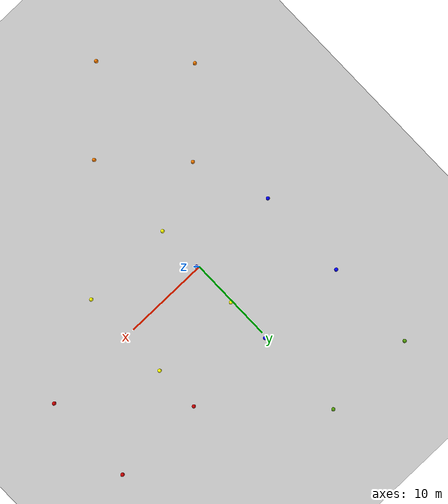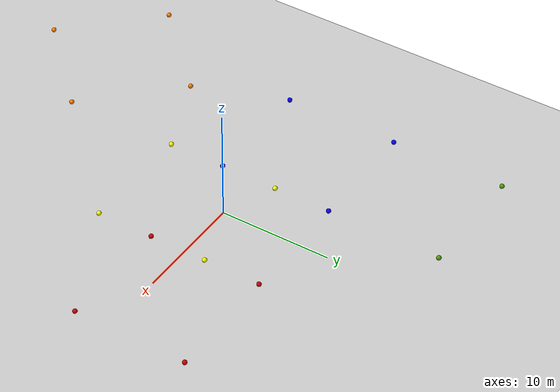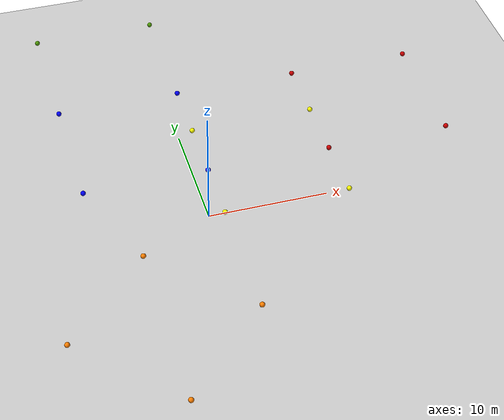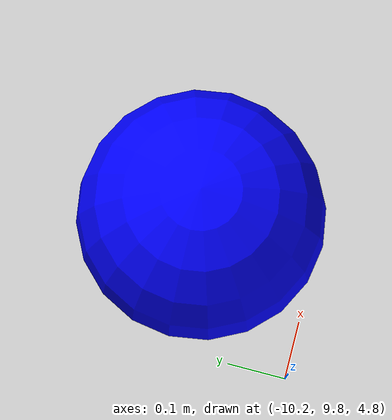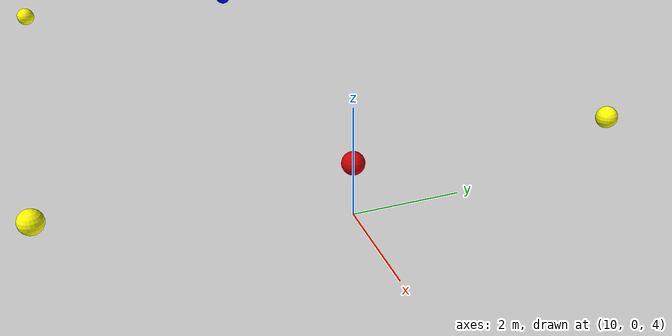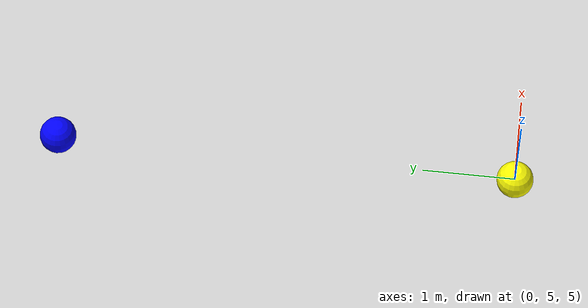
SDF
<sdf version="1.7">
 <world name="default">
  <physics type="ode">
   <ode>
    <solver>
     <type>quick</type>
     <iters>100</iters>
     <sor>1</sor>
     <use_dynamic_moi_rescaling>0</use_dynamic_moi_rescaling>
    </solver>
    <constraints>
     <cfm>0</cfm>
     <erp>0.9</erp>
     <contact_max_correcting_vel>0.1</contact_max_correcting_vel>
     <contact_surface_layer>0</contact_surface_layer>
    </constraints>
   </ode>
   <real_time_update_rate>-1</real_time_update_rate>
   <max_step_size>0.001</max_step_size>
   <real_time_factor>1</real_time_factor>
  </physics>
  <model name="ground_plane">
   <pose>0 520 0 0 0 -1.5708</pose>
   <static>1</static>
   <link name="link">
    <collision name="collision">
     <geometry><plane><normal>0 0 1</normal><size>5000 5000</size></plane></geometry>
     <surface><friction><ode><mu>1</mu><mu2>1</mu2></ode></friction></surface>
    </collision>
    <visual name="runway">
     <pose>0 0 0.005 0 -0 0</pose>
     <cast_shadows>0</cast_shadows>
     <geometry><plane><normal>0 0 1</normal><size>1829 45</size></plane></geometry>
     <material>
      <script><uri>file://media/materials/scripts/gazebo.material</uri><name>Gazebo/Runway</name></script>
     </material>
    </visual>
    <visual name="grass">
     <pose>0 0 -0.1 0 -0 0</pose>
     <cast_shadows>0</cast_shadows>
     <geometry><plane><normal>0 0 1</normal><size>5000 5000</size></plane></geometry>
     <material>
      <script><uri>file://media/materials/scripts/gazebo.material</uri><name>Gazebo/Grass</name></script>
     </material>
    </visual>
   </link>
  </model>
  <light name="sun" type="directional">
   <pose>0 0 10 0 -0 0</pose>
   <diffuse>0.8 0.8 0.8 1</diffuse>
   <specular>0.2 0.2 0.2 1</specular>
   <attenuation>
    <range>1000</range>
    <constant>0.9</constant>
    <linear>0.01</linear>
    <quadratic>0.001</quadratic>
   </attenuation>
   <direction>-0.5 0.1 -0.9</direction>
   <spot><inner_angle>0</inner_angle><outer_angle>0</outer_angle><falloff>0</falloff></spot>
  </light>
  <gravity>0 0 -9.8</gravity>
  <magnetic_field>6e-06 2.3e-05 -4.2e-05</magnetic_field>
  <atmosphere type="adiabatic"/>
  <scene><ambient>0.4 0.4 0.4 1</ambient><background>0.7 0.7 0.7 1</background><shadows>1</shadows></scene>
  <spherical_coordinates>
   <surface_model>EARTH_WGS84</surface_model>
   <latitude_deg>0</latitude_deg>
   <longitude_deg>0</longitude_deg>
   <elevation>0</elevation>
   <heading_deg>0</heading_deg>
  </spherical_coordinates>
  <model name="waypoint_0.0">
   <pose>0.0 0.0 5.0 0 0 0</pose>
   <link name="link">
    <inertial>
     <inertia><ixx>0.1</ixx><ixy>0</ixy><ixz>0</ixz><iyy>0.1</iyy><iyz>0</iyz><izz>0.1</izz></inertia>
     <mass>1</mass>
    </inertial>
    <gravity>0</gravity>
    <visual name="visual">
     <geometry><sphere><radius>0.2</radius></sphere></geometry>
     <material>
      <script><name>Gazebo/Grey</name><uri>file://media/materials/scripts/gazebo.material</uri></script>
      <shader type="pixel"><normal_map>__default__</normal_map></shader>
      <ambient>0.3 0.3 0.3 1</ambient>
      <diffuse>0.0 0.0 1.0 1</diffuse>
      <specular>0.01 0.01 0.01 1</specular>
      <emissive>0 0 0 1</emissive>
     </material>
     <transparency>0.05</transparency>
    </visual>
   </link>
   <static>0</static>
  </model>
  <model name="waypoint_0.1">
   <pose>-10.0 6.123233995736766e-16 5.0 0 0 0</pose>
   <link name="link">
    <inertial>
     <inertia><ixx>0.1</ixx><ixy>0</ixy><ixz>0</ixz><iyy>0.1</iyy><iyz>0</iyz><izz>0.1</izz></inertia>
     <mass>1</mass>
    </inertial>
    <gravity>0</gravity>
    <visual name="visual">
     <geometry><sphere><radius>0.2</radius></sphere></geometry>
     <material>
      <script><name>Gazebo/Grey</name><uri>file://media/materials/scripts/gazebo.material</uri></script>
      <shader type="pixel"><normal_map>__default__</normal_map></shader>
      <ambient>0.3 0.3 0.3 1</ambient>
      <diffuse>0.0 0.0 1.0 1</diffuse>
      <specular>0.01 0.01 0.01 1</specular>
      <emissive>0 0 0 1</emissive>
     </material>
     <transparency>0.05</transparency>
    </visual>
   </link>
   <static>0</static>
  </model>
  <model name="waypoint_0.2">
   <pose>-10.0 10.0 5.0 0 0 0</pose>
   <link name="link">
    <inertial>
     <inertia><ixx>0.1</ixx><ixy>0</ixy><ixz>0</ixz><iyy>0.1</iyy><iyz>0</iyz><izz>0.1</izz></inertia>
     <mass>1</mass>
    </inertial>
    <gravity>0</gravity>
    <visual name="visual">
     <geometry><sphere><radius>0.2</radius></sphere></geometry>
     <material>
      <script><name>Gazebo/Grey</name><uri>file://media/materials/scripts/gazebo.material</uri></script>
      <shader type="pixel"><normal_map>__default__</normal_map></shader>
      <ambient>0.3 0.3 0.3 1</ambient>
      <diffuse>0.0 0.0 1.0 1</diffuse>
      <specular>0.01 0.01 0.01 1</specular>
      <emissive>0 0 0 1</emissive>
     </material>
     <transparency>0.05</transparency>
    </visual>
   </link>
   <static>0</static>
  </model>
  <model name="waypoint_0.3">
   <pose>6.123233995736766e-16 10.0 5.0 0 0 0</pose>
   <link name="link">
    <inertial>
     <inertia><ixx>0.1</ixx><ixy>0</ixy><ixz>0</ixz><iyy>0.1</iyy><iyz>0</iyz><izz>0.1</izz></inertia>
     <mass>1</mass>
    </inertial>
    <gravity>0</gravity>
    <visual name="visual">
     <geometry><sphere><radius>0.2</radius></sphere></geometry>
     <material>
      <script><name>Gazebo/Grey</name><uri>file://media/materials/scripts/gazebo.material</uri></script>
      <shader type="pixel"><normal_map>__default__</normal_map></shader>
      <ambient>0.3 0.3 0.3 1</ambient>
      <diffuse>0.0 0.0 1.0 1</diffuse>
      <specular>0.01 0.01 0.01 1</specular>
      <emissive>0 0 0 1</emissive>
     </material>
     <transparency>0.05</transparency>
    </visual>
   </link>
   <static>0</static>
  </model>
  <model name="waypoint_0.4">
   <pose>0.0 0.0 5.0 0 0 0</pose>
   <link name="link">
    <inertial>
     <inertia><ixx>0.1</ixx><ixy>0</ixy><ixz>0</ixz><iyy>0.1</iyy><iyz>0</iyz><izz>0.1</izz></inertia>
     <mass>1</mass>
    </inertial>
    <gravity>0</gravity>
    <visual name="visual">
     <geometry><sphere><radius>0.2</radius></sphere></geometry>
     <material>
      <script><name>Gazebo/Grey</name><uri>file://media/materials/scripts/gazebo.material</uri></script>
      <shader type="pixel"><normal_map>__default__</normal_map></shader>
      <ambient>0.3 0.3 0.3 1</ambient>
      <diffuse>0.0 0.0 1.0 1</diffuse>
      <specular>0.01 0.01 0.01 1</specular>
      <emissive>0 0 0 1</emissive>
     </material>
     <transparency>0.05</transparency>
    </visual>
   </link>
   <static>0</static>
  </model>
  <model name="waypoint_1.0">
   <pose>6.123233995736766e-16 10.0 5.0 0 0 0</pose>
   <link name="link">
    <inertial>
     <inertia><ixx>0.1</ixx><ixy>0</ixy><ixz>0</ixz><iyy>0.1</iyy><iyz>0</iyz><izz>0.1</izz></inertia>
     <mass>1</mass>
    </inertial>
    <gravity>0</gravity>
    <visual name="visual">
     <geometry><sphere><radius>0.2</radius></sphere></geometry>
     <material>
      <script><name>Gazebo/Grey</name><uri>file://media/materials/scripts/gazebo.material</uri></script>
      <shader type="pixel"><normal_map>__default__</normal_map></shader>
      <ambient>0.3 0.3 0.3 1</ambient>
      <diffuse>0.306 0.604 0.024 1</diffuse>
      <specular>0.01 0.01 0.01 1</specular>
      <emissive>0 0 0 1</emissive>
     </material>
     <transparency>0.05</transparency>
    </visual>
   </link>
   <static>0</static>
  </model>
  <model name="waypoint_1.1">
   <pose>-10.0 10.0 5.0 0 0 0</pose>
   <link name="link">
    <inertial>
     <inertia><ixx>0.1</ixx><ixy>0</ixy><ixz>0</ixz><iyy>0.1</iyy><iyz>0</iyz><izz>0.1</izz></inertia>
     <mass>1</mass>
    </inertial>
    <gravity>0</gravity>
    <visual name="visual">
     <geometry><sphere><radius>0.2</radius></sphere></geometry>
     <material>
      <script><name>Gazebo/Grey</name><uri>file://media/materials/scripts/gazebo.material</uri></script>
      <shader type="pixel"><normal_map>__default__</normal_map></shader>
      <ambient>0.3 0.3 0.3 1</ambient>
      <diffuse>0.306 0.604 0.024 1</diffuse>
      <specular>0.01 0.01 0.01 1</specular>
      <emissive>0 0 0 1</emissive>
     </material>
     <transparency>0.05</transparency>
    </visual>
   </link>
   <static>0</static>
  </model>
  <model name="waypoint_1.2">
   <pose>-9.999999999999998 20.0 5.0 0 0 0</pose>
   <link name="link">
    <inertial>
     <inertia><ixx>0.1</ixx><ixy>0</ixy><ixz>0</ixz><iyy>0.1</iyy><iyz>0</iyz><izz>0.1</izz></inertia>
     <mass>1</mass>
    </inertial>
    <gravity>0</gravity>
    <visual name="visual">
     <geometry><sphere><radius>0.2</radius></sphere></geometry>
     <material>
      <script><name>Gazebo/Grey</name><uri>file://media/materials/scripts/gazebo.material</uri></script>
      <shader type="pixel"><normal_map>__default__</normal_map></shader>
      <ambient>0.3 0.3 0.3 1</ambient>
      <diffuse>0.306 0.604 0.024 1</diffuse>
      <specular>0.01 0.01 0.01 1</specular>
      <emissive>0 0 0 1</emissive>
     </material>
     <transparency>0.05</transparency>
    </visual>
   </link>
   <static>0</static>
  </model>
  <model name="waypoint_1.3">
   <pose>1.2246467991473533e-15 20.0 5.0 0 0 0</pose>
   <link name="link">
    <inertial>
     <inertia><ixx>0.1</ixx><ixy>0</ixy><ixz>0</ixz><iyy>0.1</iyy><iyz>0</iyz><izz>0.1</izz></inertia>
     <mass>1</mass>
    </inertial>
    <gravity>0</gravity>
    <visual name="visual">
     <geometry><sphere><radius>0.2</radius></sphere></geometry>
     <material>
      <script><name>Gazebo/Grey</name><uri>file://media/materials/scripts/gazebo.material</uri></script>
      <shader type="pixel"><normal_map>__default__</normal_map></shader>
      <ambient>0.3 0.3 0.3 1</ambient>
      <diffuse>0.306 0.604 0.024 1</diffuse>
      <specular>0.01 0.01 0.01 1</specular>
      <emissive>0 0 0 1</emissive>
     </material>
     <transparency>0.05</transparency>
    </visual>
   </link>
   <static>0</static>
  </model>
  <model name="waypoint_1.4">
   <pose>6.123233995736766e-16 10.0 5.0 0 0 0</pose>
   <link name="link">
    <inertial>
     <inertia><ixx>0.1</ixx><ixy>0</ixy><ixz>0</ixz><iyy>0.1</iyy><iyz>0</iyz><izz>0.1</izz></inertia>
     <mass>1</mass>
    </inertial>
    <gravity>0</gravity>
    <visual name="visual">
     <geometry><sphere><radius>0.2</radius></sphere></geometry>
     <material>
      <script><name>Gazebo/Grey</name><uri>file://media/materials/scripts/gazebo.material</uri></script>
      <shader type="pixel"><normal_map>__default__</normal_map></shader>
      <ambient>0.3 0.3 0.3 1</ambient>
      <diffuse>0.306 0.604 0.024 1</diffuse>
      <specular>0.01 0.01 0.01 1</specular>
      <emissive>0 0 0 1</emissive>
     </material>
     <transparency>0.05</transparency>
    </visual>
   </link>
   <static>0</static>
  </model>
  <model name="waypoint_2.0">
   <pose>10.0 -5.000000000000001 5.0 0 0 0</pose>
   <link name="link">
    <inertial>
     <inertia><ixx>0.1</ixx><ixy>0</ixy><ixz>0</ixz><iyy>0.1</iyy><iyz>0</iyz><izz>0.1</izz></inertia>
     <mass>1</mass>
    </inertial>
    <gravity>0</gravity>
    <visual name="visual">
     <geometry><sphere><radius>0.2</radius></sphere></geometry>
     <material>
      <script><name>Gazebo/Grey</name><uri>file://media/materials/scripts/gazebo.material</uri></script>
      <shader type="pixel"><normal_map>__default__</normal_map></shader>
      <ambient>0.3 0.3 0.3 1</ambient>
      <diffuse>1.0 1.0 0.0 1</diffuse>
      <specular>0.01 0.01 0.01 1</specular>
      <emissive>0 0 0 1</emissive>
     </material>
     <transparency>0.05</transparency>
    </visual>
   </link>
   <static>0</static>
  </model>
  <model name="waypoint_2.1">
   <pose>-3.061616997868383e-16 -5.0 5.0 0 0 0</pose>
   <link name="link">
    <inertial>
     <inertia><ixx>0.1</ixx><ixy>0</ixy><ixz>0</ixz><iyy>0.1</iyy><iyz>0</iyz><izz>0.1</izz></inertia>
     <mass>1</mass>
    </inertial>
    <gravity>0</gravity>
    <visual name="visual">
     <geometry><sphere><radius>0.2</radius></sphere></geometry>
     <material>
      <script><name>Gazebo/Grey</name><uri>file://media/materials/scripts/gazebo.material</uri></script>
      <shader type="pixel"><normal_map>__default__</normal_map></shader>
      <ambient>0.3 0.3 0.3 1</ambient>
      <diffuse>1.0 1.0 0.0 1</diffuse>
      <specular>0.01 0.01 0.01 1</specular>
      <emissive>0 0 0 1</emissive>
     </material>
     <transparency>0.05</transparency>
    </visual>
   </link>
   <static>0</static>
  </model>
  <model name="waypoint_2.2">
   <pose>3.061616997868383e-16 5.0 5.0 0 0 0</pose>
   <link name="link">
    <inertial>
     <inertia><ixx>0.1</ixx><ixy>0</ixy><ixz>0</ixz><iyy>0.1</iyy><iyz>0</iyz><izz>0.1</izz></inertia>
     <mass>1</mass>
    </inertial>
    <gravity>0</gravity>
    <visual name="visual">
     <geometry><sphere><radius>0.2</radius></sphere></geometry>
     <material>
      <script><name>Gazebo/Grey</name><uri>file://media/materials/scripts/gazebo.material</uri></script>
      <shader type="pixel"><normal_map>__default__</normal_map></shader>
      <ambient>0.3 0.3 0.3 1</ambient>
      <diffuse>1.0 1.0 0.0 1</diffuse>
      <specular>0.01 0.01 0.01 1</specular>
      <emissive>0 0 0 1</emissive>
     </material>
     <transparency>0.05</transparency>
    </visual>
   </link>
   <static>0</static>
  </model>
  <model name="waypoint_2.3">
   <pose>10.0 4.999999999999999 5.0 0 0 0</pose>
   <link name="link">
    <inertial>
     <inertia><ixx>0.1</ixx><ixy>0</ixy><ixz>0</ixz><iyy>0.1</iyy><iyz>0</iyz><izz>0.1</izz></inertia>
     <mass>1</mass>
    </inertial>
    <gravity>0</gravity>
    <visual name="visual">
     <geometry><sphere><radius>0.2</radius></sphere></geometry>
     <material>
      <script><name>Gazebo/Grey</name><uri>file://media/materials/scripts/gazebo.material</uri></script>
      <shader type="pixel"><normal_map>__default__</normal_map></shader>
      <ambient>0.3 0.3 0.3 1</ambient>
      <diffuse>1.0 1.0 0.0 1</diffuse>
      <specular>0.01 0.01 0.01 1</specular>
      <emissive>0 0 0 1</emissive>
     </material>
     <transparency>0.05</transparency>
    </visual>
   </link>
   <static>0</static>
  </model>
  <model name="waypoint_2.4">
   <pose>10.0 -5.000000000000001 5.0 0 0 0</pose>
   <link name="link">
    <inertial>
     <inertia><ixx>0.1</ixx><ixy>0</ixy><ixz>0</ixz><iyy>0.1</iyy><iyz>0</iyz><izz>0.1</izz></inertia>
     <mass>1</mass>
    </inertial>
    <gravity>0</gravity>
    <visual name="visual">
     <geometry><sphere><radius>0.2</radius></sphere></geometry>
     <material>
      <script><name>Gazebo/Grey</name><uri>file://media/materials/scripts/gazebo.material</uri></script>
      <shader type="pixel"><normal_map>__default__</normal_map></shader>
      <ambient>0.3 0.3 0.3 1</ambient>
      <diffuse>1.0 1.0 0.0 1</diffuse>
      <specular>0.01 0.01 0.01 1</specular>
      <emissive>0 0 0 1</emissive>
     </material>
     <transparency>0.05</transparency>
    </visual>
   </link>
   <static>0</static>
  </model>
  <model name="waypoint_3.0">
   <pose>-9.18485099360515e-16 -15.0 5.0 0 0 0</pose>
   <link name="link">
    <inertial>
     <inertia><ixx>0.1</ixx><ixy>0</ixy><ixz>0</ixz><iyy>0.1</iyy><iyz>0</iyz><izz>0.1</izz></inertia>
     <mass>1</mass>
    </inertial>
    <gravity>0</gravity>
    <visual name="visual">
     <geometry><sphere><radius>0.2</radius></sphere></geometry>
     <material>
      <script><name>Gazebo/Grey</name><uri>file://media/materials/scripts/gazebo.material</uri></script>
      <shader type="pixel"><normal_map>__default__</normal_map></shader>
      <ambient>0.3 0.3 0.3 1</ambient>
      <diffuse>1.0 0.5 0.0 1</diffuse>
      <specular>0.01 0.01 0.01 1</specular>
      <emissive>0 0 0 1</emissive>
     </material>
     <transparency>0.05</transparency>
    </visual>
   </link>
   <static>0</static>
  </model>
  <model name="waypoint_3.1">
   <pose>-7.071067811865477 -22.071067811865476 5.0 0 0 0</pose>
   <link name="link">
    <inertial>
     <inertia><ixx>0.1</ixx><ixy>0</ixy><ixz>0</ixz><iyy>0.1</iyy><iyz>0</iyz><izz>0.1</izz></inertia>
     <mass>1</mass>
    </inertial>
    <gravity>0</gravity>
    <visual name="visual">
     <geometry><sphere><radius>0.2</radius></sphere></geometry>
     <material>
      <script><name>Gazebo/Grey</name><uri>file://media/materials/scripts/gazebo.material</uri></script>
      <shader type="pixel"><normal_map>__default__</normal_map></shader>
      <ambient>0.3 0.3 0.3 1</ambient>
      <diffuse>1.0 0.5 0.0 1</diffuse>
      <specular>0.01 0.01 0.01 1</specular>
      <emissive>0 0 0 1</emissive>
     </material>
     <transparency>0.05</transparency>
    </visual>
   </link>
   <static>0</static>
  </model>
  <model name="waypoint_3.2">
   <pose>-14.142135623730953 -15.0 5.0 0 0 0</pose>
   <link name="link">
    <inertial>
     <inertia><ixx>0.1</ixx><ixy>0</ixy><ixz>0</ixz><iyy>0.1</iyy><iyz>0</iyz><izz>0.1</izz></inertia>
     <mass>1</mass>
    </inertial>
    <gravity>0</gravity>
    <visual name="visual">
     <geometry><sphere><radius>0.2</radius></sphere></geometry>
     <material>
      <script><name>Gazebo/Grey</name><uri>file://media/materials/scripts/gazebo.material</uri></script>
      <shader type="pixel"><normal_map>__default__</normal_map></shader>
      <ambient>0.3 0.3 0.3 1</ambient>
      <diffuse>1.0 0.5 0.0 1</diffuse>
      <specular>0.01 0.01 0.01 1</specular>
      <emissive>0 0 0 1</emissive>
     </material>
     <transparency>0.05</transparency>
    </visual>
   </link>
   <static>0</static>
  </model>
  <model name="waypoint_3.3">
   <pose>-7.0710678118654755 -7.9289321881345245 5.0 0 0 0</pose>
   <link name="link">
    <inertial>
     <inertia><ixx>0.1</ixx><ixy>0</ixy><ixz>0</ixz><iyy>0.1</iyy><iyz>0</iyz><izz>0.1</izz></inertia>
     <mass>1</mass>
    </inertial>
    <gravity>0</gravity>
    <visual name="visual">
     <geometry><sphere><radius>0.2</radius></sphere></geometry>
     <material>
      <script><name>Gazebo/Grey</name><uri>file://media/materials/scripts/gazebo.material</uri></script>
      <shader type="pixel"><normal_map>__default__</normal_map></shader>
      <ambient>0.3 0.3 0.3 1</ambient>
      <diffuse>1.0 0.5 0.0 1</diffuse>
      <specular>0.01 0.01 0.01 1</specular>
      <emissive>0 0 0 1</emissive>
     </material>
     <transparency>0.05</transparency>
    </visual>
   </link>
   <static>0</static>
  </model>
  <model name="waypoint_3.4">
   <pose>-9.18485099360515e-16 -15.0 5.0 0 0 0</pose>
   <link name="link">
    <inertial>
     <inertia><ixx>0.1</ixx><ixy>0</ixy><ixz>0</ixz><iyy>0.1</iyy><iyz>0</iyz><izz>0.1</izz></inertia>
     <mass>1</mass>
    </inertial>
    <gravity>0</gravity>
    <visual name="visual">
     <geometry><sphere><radius>0.2</radius></sphere></geometry>
     <material>
      <script><name>Gazebo/Grey</name><uri>file://media/materials/scripts/gazebo.material</uri></script>
      <shader type="pixel"><normal_map>__default__</normal_map></shader>
      <ambient>0.3 0.3 0.3 1</ambient>
      <diffuse>1.0 0.5 0.0 1</diffuse>
      <specular>0.01 0.01 0.01 1</specular>
      <emissive>0 0 0 1</emissive>
     </material>
     <transparency>0.05</transparency>
    </visual>
   </link>
   <static>0</static>
  </model>
  <model name="waypoint_4.0">
   <pose>20.0 -1.2246467991473533e-15 5.0 0 0 0</pose>
   <link name="link">
    <inertial>
     <inertia><ixx>0.1</ixx><ixy>0</ixy><ixz>0</ixz><iyy>0.1</iyy><iyz>0</iyz><izz>0.1</izz></inertia>
     <mass>1</mass>
    </inertial>
    <gravity>0</gravity>
    <visual name="visual">
     <geometry><sphere><radius>0.2</radius></sphere></geometry>
     <material>
      <script><name>Gazebo/Grey</name><uri>file://media/materials/scripts/gazebo.material</uri></script>
      <shader type="pixel"><normal_map>__default__</normal_map></shader>
      <ambient>0.3 0.3 0.3 1</ambient>
      <diffuse>0.8 0.0 0.0 1</diffuse>
      <specular>0.01 0.01 0.01 1</specular>
      <emissive>0 0 0 1</emissive>
     </material>
     <transparency>0.05</transparency>
    </visual>
   </link>
   <static>0</static>
  </model>
  <model name="waypoint_4.1">
   <pose>10.0 -6.123233995736766e-16 5.0 0 0 0</pose>
   <link name="link">
    <inertial>
     <inertia><ixx>0.1</ixx><ixy>0</ixy><ixz>0</ixz><iyy>0.1</iyy><iyz>0</iyz><izz>0.1</izz></inertia>
     <mass>1</mass>
    </inertial>
    <gravity>0</gravity>
    <visual name="visual">
     <geometry><sphere><radius>0.2</radius></sphere></geometry>
     <material>
      <script><name>Gazebo/Grey</name><uri>file://media/materials/scripts/gazebo.material</uri></script>
      <shader type="pixel"><normal_map>__default__</normal_map></shader>
      <ambient>0.3 0.3 0.3 1</ambient>
      <diffuse>0.8 0.0 0.0 1</diffuse>
      <specular>0.01 0.01 0.01 1</specular>
      <emissive>0 0 0 1</emissive>
     </material>
     <transparency>0.05</transparency>
    </visual>
   </link>
   <static>0</static>
  </model>
  <model name="waypoint_4.2">
   <pose>10.0 10.0 5.0 0 0 0</pose>
   <link name="link">
    <inertial>
     <inertia><ixx>0.1</ixx><ixy>0</ixy><ixz>0</ixz><iyy>0.1</iyy><iyz>0</iyz><izz>0.1</izz></inertia>
     <mass>1</mass>
    </inertial>
    <gravity>0</gravity>
    <visual name="visual">
     <geometry><sphere><radius>0.2</radius></sphere></geometry>
     <material>
      <script><name>Gazebo/Grey</name><uri>file://media/materials/scripts/gazebo.material</uri></script>
      <shader type="pixel"><normal_map>__default__</normal_map></shader>
      <ambient>0.3 0.3 0.3 1</ambient>
      <diffuse>0.8 0.0 0.0 1</diffuse>
      <specular>0.01 0.01 0.01 1</specular>
      <emissive>0 0 0 1</emissive>
     </material>
     <transparency>0.05</transparency>
    </visual>
   </link>
   <static>0</static>
  </model>
  <model name="waypoint_4.3">
   <pose>20.0 9.999999999999998 5.0 0 0 0</pose>
   <link name="link">
    <inertial>
     <inertia><ixx>0.1</ixx><ixy>0</ixy><ixz>0</ixz><iyy>0.1</iyy><iyz>0</iyz><izz>0.1</izz></inertia>
     <mass>1</mass>
    </inertial>
    <gravity>0</gravity>
    <visual name="visual">
     <geometry><sphere><radius>0.2</radius></sphere></geometry>
     <material>
      <script><name>Gazebo/Grey</name><uri>file://media/materials/scripts/gazebo.material</uri></script>
      <shader type="pixel"><normal_map>__default__</normal_map></shader>
      <ambient>0.3 0.3 0.3 1</ambient>
      <diffuse>0.8 0.0 0.0 1</diffuse>
      <specular>0.01 0.01 0.01 1</specular>
      <emissive>0 0 0 1</emissive>
     </material>
     <transparency>0.05</transparency>
    </visual>
   </link>
   <static>0</static>
  </model>
  <model name="waypoint_4.4">
   <pose>20.0 -1.2246467991473533e-15 5.0 0 0 0</pose>
   <link name="link">
    <inertial>
     <inertia><ixx>0.1</ixx><ixy>0</ixy><ixz>0</ixz><iyy>0.1</iyy><iyz>0</iyz><izz>0.1</izz></inertia>
     <mass>1</mass>
    </inertial>
    <gravity>0</gravity>
    <visual name="visual">
     <geometry><sphere><radius>0.2</radius></sphere></geometry>
     <material>
      <script><name>Gazebo/Grey</name><uri>file://media/materials/scripts/gazebo.material</uri></script>
      <shader type="pixel"><normal_map>__default__</normal_map></shader>
      <ambient>0.3 0.3 0.3 1</ambient>
      <diffuse>0.8 0.0 0.0 1</diffuse>
      <specular>0.01 0.01 0.01 1</specular>
      <emissive>0 0 0 1</emissive>
     </material>
     <transparency>0.05</transparency>
    </visual>
   </link>
   <static>0</static>
  </model>
 </world>
</sdf>
